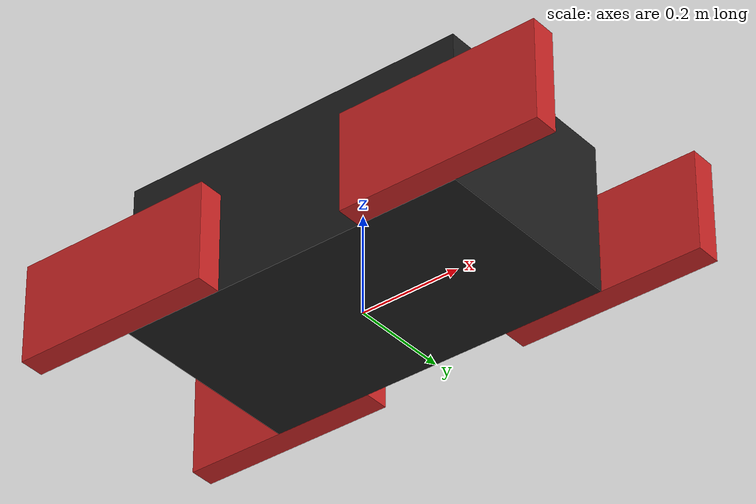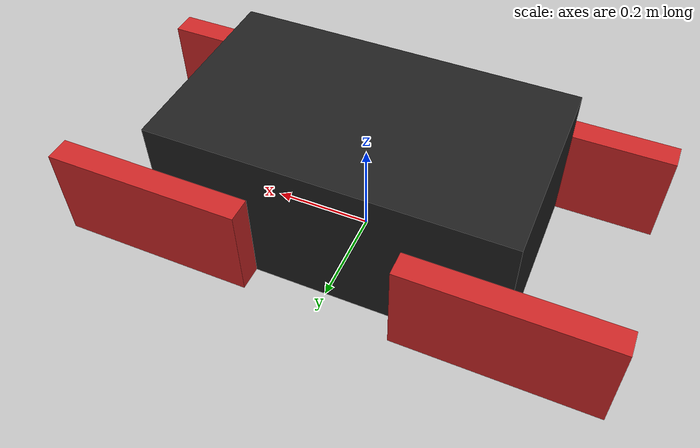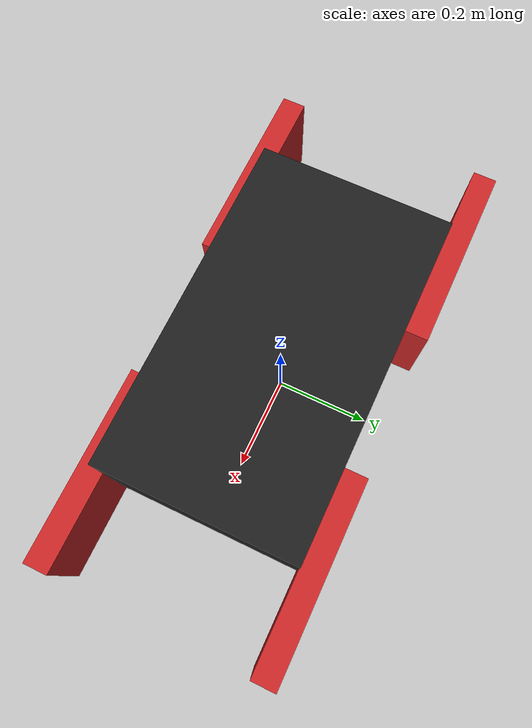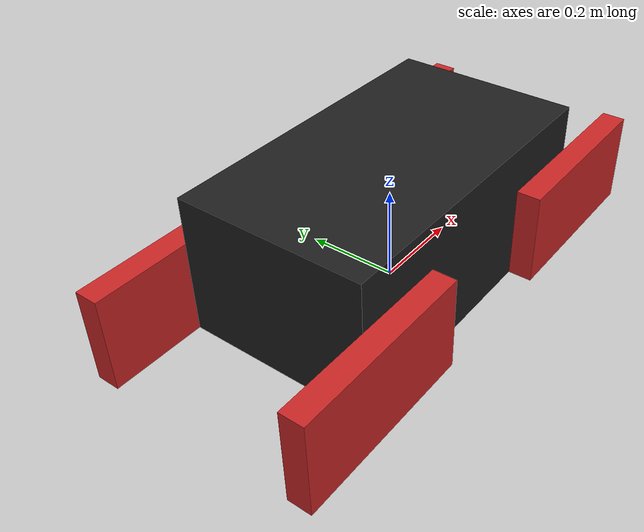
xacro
<?xml version="1.0"?>
<robot xmlns:xacro="http://www.ros.org/wiki/xacro" >

<!-- Main Body -->
    <xacro:property name="body_length" value="0.7"/>
    <xacro:property name="body_width" value="0.4"/>
    <xacro:property name="body_height" value="0.3"/>
    <xacro:property name="body_mass" value="25.0"/>

    <link name="body_link">
        <visual>
            <origin rpy="0 0 0" xyz="0 0 ${(body_height/2)}"/>
            <geometry>
                <box size="${body_length} ${body_width} ${body_height}"/>
            </geometry>
            <material name="black"/>
        </visual>
        <collision>
            <origin rpy="0 0 0" xyz="0 0 ${(body_height/2)}"/>
            <geometry>
                <box size="${body_length} ${body_width} ${body_height}"/>
            </geometry>
        </collision>
        <xacro:inertial_box mass="${body_mass}" x="${body_length}" y="${body_width}" z="${body_height}">
            <origin rpy="0 0 0" xyz="0 0 ${(body_height/2)}"/>
        </xacro:inertial_box>
    </link>

<!-- Flipper -->
    <xacro:property name="flipper_length" value="0.4"/>
    <xacro:property name="flipper_width" value="0.05"/>
    <xacro:property name="flipper_height" value="0.2"/>
    <xacro:property name="flipper_mass" value="3.0"/>

<!-- Flipper link macro -->
    <xacro:macro name="flipper_link" params="position">
        <link name="flipper_${position}_link">
            <visual>
                <origin xyz="${(flipper_height/2) - (flipper_length/2)} 0 0" rpy="0 0 0"/>
                <geometry>
                    <box size="${flipper_length} ${flipper_width} ${flipper_height}"/>
                </geometry>
                <material name="red"/>
            </visual>
            <collision>
                <origin xyz="${(flipper_height/2) - (flipper_length/2)} 0 0" rpy="0 0 0"/>
                <geometry>
                    <box size="${flipper_length} ${flipper_width} ${flipper_height}"/>
                </geometry>
            </collision>
            <xacro:inertial_box mass="${flipper_mass}" x="${flipper_length}" y="${flipper_width}" z="${flipper_height}">
                <origin xyz="${(flipper_height/2) - (flipper_length/2)} 0 0" rpy="0 0 0"/>
            </xacro:inertial_box>
        </link>
    </xacro:macro>

<!-- Front Left Flipper-->
    <joint name="flipper_fr_joint" type="continuous">
        <origin xyz="${body_length/2 - flipper_height/2} ${(body_width/2) + (flipper_width/2)} ${flipper_height/2}" rpy="0 ${pi} 0"/>
        <parent link="body_link"/>
        <child link="flipper_fr_link"/>
        <axis xyz="0 1 0"/>
    </joint>

    <xacro:flipper_link position="fr"/>

<!-- Front Right Flipper-->
    <joint name="flipper_fl_joint" type="continuous">
        <origin xyz="${(body_length/2) - (flipper_height/2)} ${-(body_width/2) - (flipper_width/2)} ${flipper_height/2}" rpy="0 ${pi} 0"/>
        <parent link="body_link"/>
        <child link="flipper_fl_link"/>
        <axis xyz="0 1 0"/>
    </joint>

    <xacro:flipper_link position="fl"/>

<!-- Rear Left Flipper-->
    <joint name="flipper_rr_joint" type="continuous">
        <origin xyz="${-(body_length/2) + (flipper_height/2)} ${(body_width/2) + (flipper_width/2)} ${flipper_height/2}" rpy="0 0 0"/>
        <parent link="body_link"/>
        <child link="flipper_rr_link"/>
        <axis xyz="0 -1 0"/>
    </joint>

    <xacro:flipper_link position="rr"/>

<!-- Rear Right Flipper-->
    <joint name="flipper_rl_joint" type="continuous">
        <origin xyz="${-(body_length/2) + (flipper_height/2)} ${-(body_width/2) - (flipper_width/2)} ${flipper_height/2}" rpy="0 0 0"/>
        <parent link="body_link"/>
        <child link="flipper_rl_link"/>
        <axis xyz="0 -1 0"/>
    </joint>

    <xacro:flipper_link position="rl"/>

</robot>
